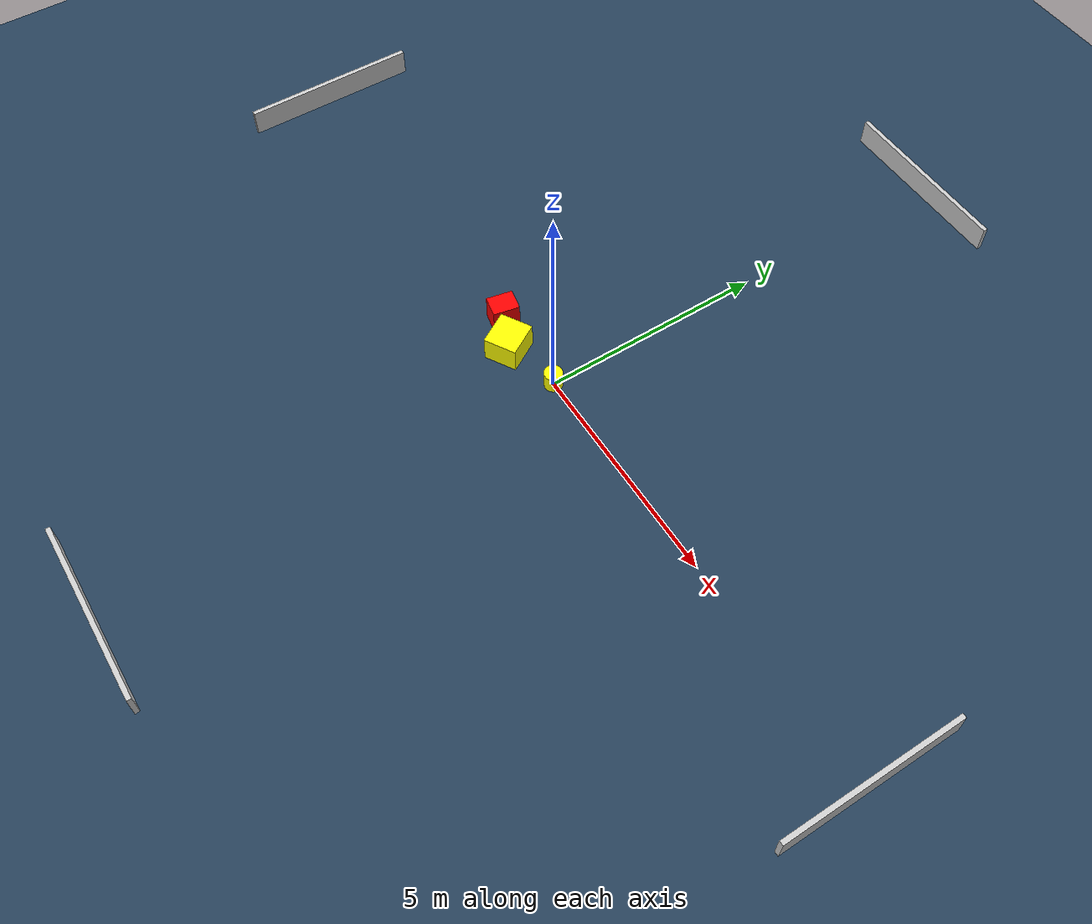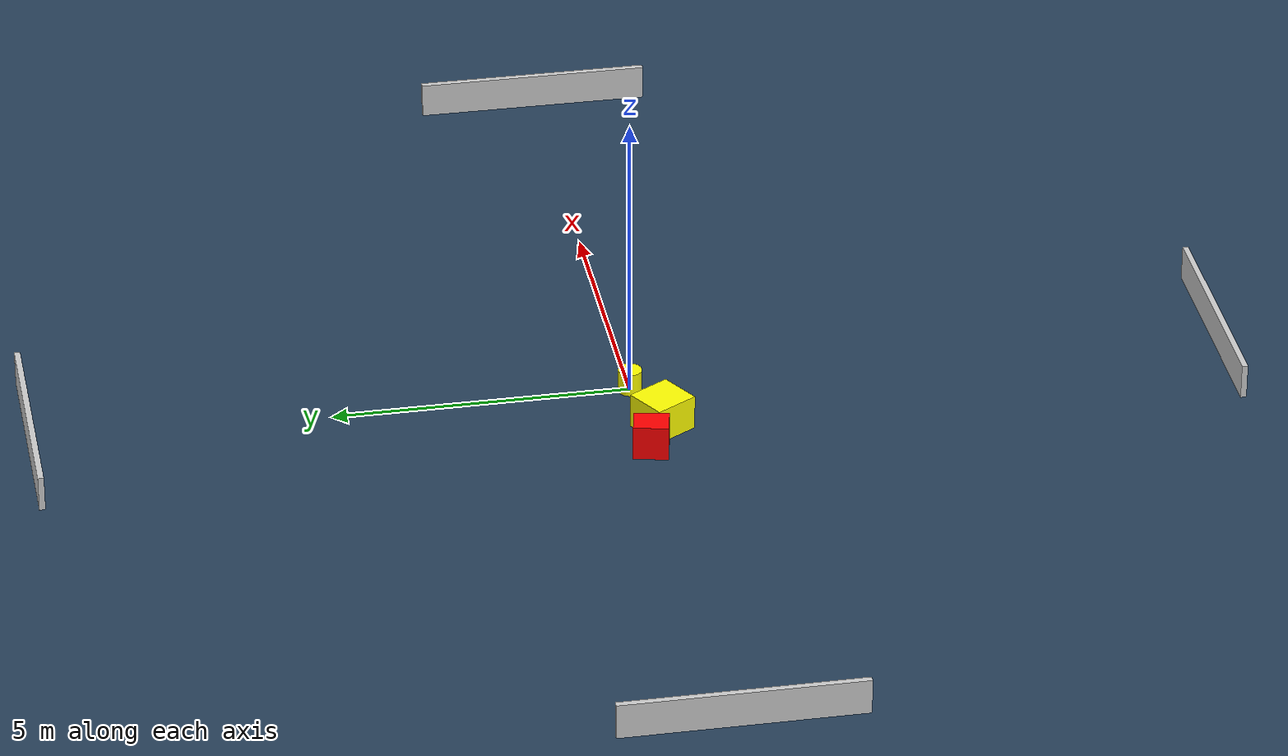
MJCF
<?xml version="1.0" ?>
<mujoco model="generated_environment">
  <option timestep="0.01" integrator="RK4" cone="elliptic"/>
  <default>
    <geom density="1"/>
  </default>
  <asset>
    <texture builtin="gradient" height="3072" name="skybox" rgb1="0.3 0.5 0.7" rgb2="0 0 0" type="skybox" width="512"/>
    <texture builtin="checker" height="300" name="groundplane" rgb1="0.2 0.3 0.4" rgb2="0.1 0.2 0.3" type="2d" width="300"/>
    <material name="groundplane" reflectance="0.2" texrepeat="5 5" texture="groundplane"/>
  </asset>
  <worldbody>
    <light dir="0 0 -1" directional="true" pos="0 0 1.5"/>
    <geom condim="3" friction="0.5 0.005 0.001" material="groundplane" name="floor" pos="0 0 0" size="0 0 0.05" type="plane"/>
    <body name="walls">
      <geom name="wall_1" condim="4" pos="-10.0 0.0 0.3" rgba="0.800000011920929 0.800000011920929 0.800000011920929 1.0" size="0.05 2.0 0.3" type="box"/>
      <geom name="wall_2" condim="4" pos="10.0 0.0 0.3" rgba="0.800000011920929 0.800000011920929 0.800000011920929 1.0" size="0.05 2.0 0.3" type="box"/>
      <geom name="wall_3" condim="4" pos="0.0 -10.0 0.3" rgba="0.800000011920929 0.800000011920929 0.800000011920929 1.0" size="2.0 0.05 0.3" type="box"/>
      <geom name="wall_4" condim="4" pos="0.0 10.0 0.3" rgba="0.800000011920929 0.800000011920929 0.800000011920929 1.0" size="2.0 0.05 0.3" type="box"/>
    </body>
    <body name="robot">
      <joint name="joint_x" type="slide" pos="0 0 0" axis="1 0 0"/>
      <joint name="joint_y" type="slide" pos="0 0 0" axis="0 1 0"/>
      <geom name="robot" type="cylinder" pos="0.0 0.0 0.2" size="0.2 0.2 0.0" mass="5.0" friction="1.0 0.005 0.0001" condim="4" rgba="1.0 1.0 0.0 1.0"/>
    </body>
    <body name="obstacle_1_movable">
      <geom name="obstacle_1_movable" condim="4" pos="-1.2372038495402737 -0.3254912389147559 0.3" euler="0 0 210.60303461025543" friction="0.0 0.005 0.001" rgba="1.0 1.0 0.0 1.0" size="0.3653047859560209 0.3849836488191348 0.3" type="box" mass="0.1"/>
      <joint type="free"/>
    </body>
    <body name="obstacle_2_static">
      <geom name="obstacle_2_static" condim="4" pos="-1.9816262711757866 -0.0011925050934013047 0.3" euler="0 0 78.55718194644288" friction="0.0 0.005 0.001" rgba="1.0 0.0 0.0 1.0" size="0.2923091933690273 0.2343383116912503 0.3" type="box"/>
    </body>
  </worldbody>
  <actuator>
    <motor name="actuator_x" joint="joint_x" gear="1" ctrlrange="-1 1"/>
    <motor name="actuator_y" joint="joint_y" gear="1" ctrlrange="-1 1"/>
  </actuator>
</mujoco>
